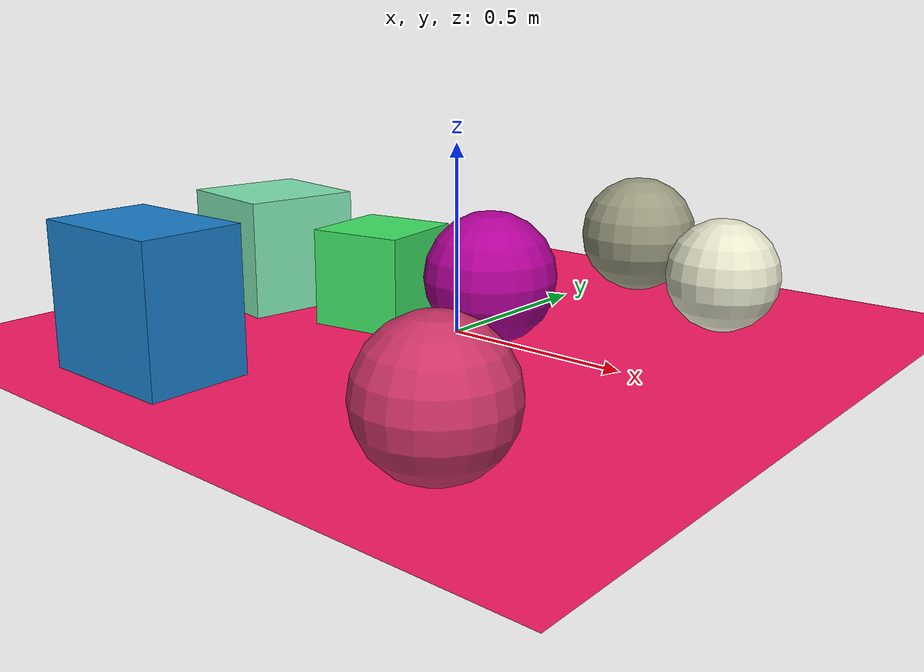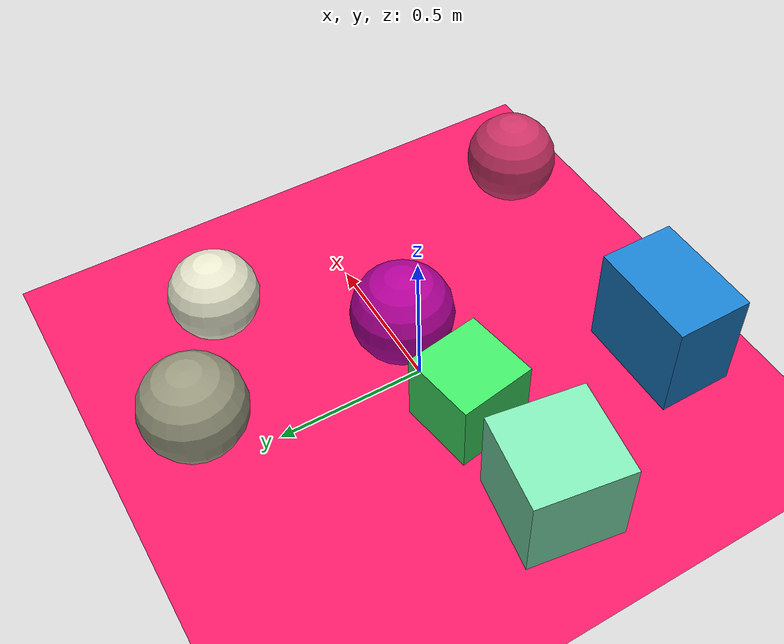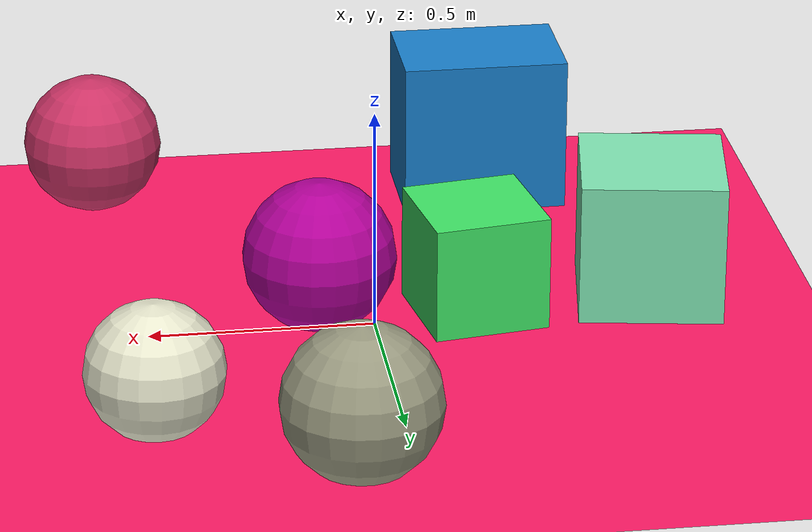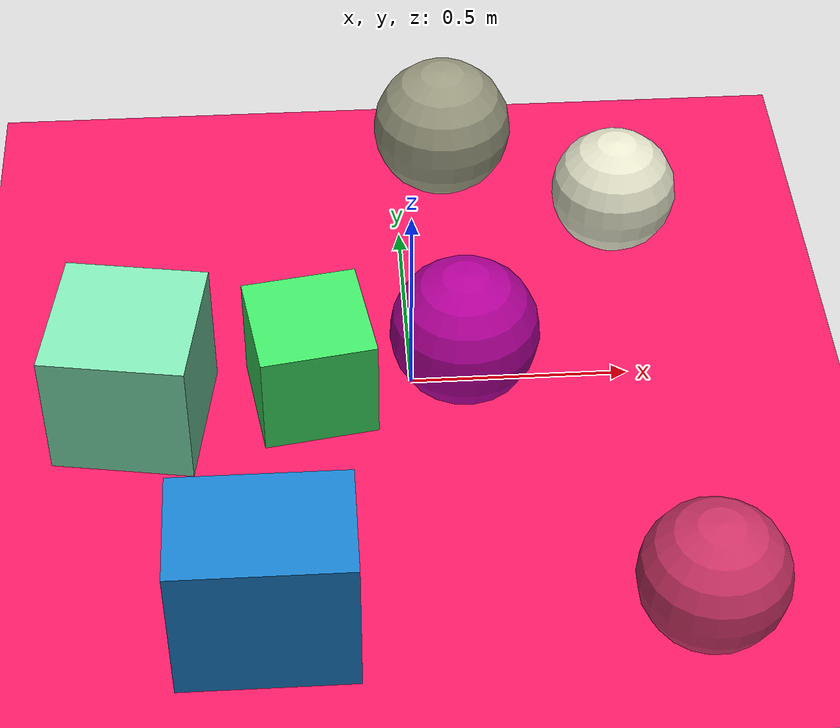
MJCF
<mujoco>
   <asset>
<texture type="skybox" builtin="gradient" rgb1="0.4 0.3 0.9" rgb2="0.7 0.9 0.9" width="256" height="256"/>
<texture name="checker_0" builtin="checker" rgb1="0.5 0.9 0.2" rgb2="0.0 0.9 0.6" width="200" height="200"/>
<texture name="flat_1" builtin="flat" rgb1="0.9 0.9 0.8" rgb2="0.9 0.9 0.8"  width="200" height="200"/>
<texture name="flat_2" builtin="flat" rgb1="0.5 0.9 0.7" rgb2="0.5 0.9 0.7"  width="200" height="200"/>
<texture name="flat_3" builtin="flat" rgb1="0.1 0.5 0.8" rgb2="0.1 0.5 0.8"  width="200" height="200"/>
<texture name="checker_4" builtin="checker" rgb1="0.5 0.3 0.4" rgb2="0.7 0.9 0.6" width="200" height="200"/>
<texture name="flat_5" builtin="flat" rgb1="0.8 0.2 0.4" rgb2="0.8 0.2 0.4"  width="200" height="200"/>
<texture name="flat_6" builtin="flat" rgb1="0.7 0.0 0.6" rgb2="0.7 0.0 0.6"  width="200" height="200"/><material name="checker_0_mat" reflectance="0" texrepeat="3 3" texture="checker_0" texuniform="false" />
<material name="flat_1_mat" reflectance="0" texture="flat_1" texuniform="true"/>
<material name="flat_2_mat" reflectance="0" texture="flat_2" texuniform="true"/>
<material name="flat_3_mat" reflectance="0" texture="flat_3" texuniform="true"/>
<material name="checker_4_mat" reflectance="0" texrepeat="10 10" texture="checker_4" texuniform="false" />
<material name="flat_5_mat" reflectance="0" texture="flat_5" texuniform="true"/>
<material name="flat_6_mat" reflectance="0" texture="flat_6" texuniform="true"/>
   </asset>

   <worldbody>
      <light diffuse=".9 .9 .9" pos="0 0 3" dir="0 0 -1"/>
     <geom type="plane" size="1 1 0.1" rgba="1.0 0.1 0.4 1"/>
<geom type="box" pos="-0.23 -0.04 0.13" size="0.13 0.13 0.13" material="checker_0_mat" euler="0 0 9" />
<geom type="sphere" pos="0.52 0.47 0.15" size="0.15 0.15 0.15" material="flat_1_mat" euler="0 0 55" />
<geom type="box" pos="-0.63 -0.08 0.16" size="0.16 0.16 0.16" material="flat_2_mat" euler="0 0 81" />
<geom type="box" pos="-0.34 -0.71 0.18" size="0.19 0.13 0.18" material="flat_3_mat" euler="0 0 0" />
<geom type="sphere" pos="0.12 0.71 0.17" size="0.17 0.17 0.17" material="checker_4_mat" euler="0 0 42" />
<geom type="sphere" pos="0.57 -0.73 0.16" size="0.16 0.16 0.16" material="flat_5_mat" euler="0 0 82" />
<geom type="sphere" pos="0.12 -0.01 0.17" size="0.17 0.17 0.17" material="flat_6_mat" euler="0 0 59" /><camera euler="60 0 180" fovy="60" name="camera1" pos="-0.2 -1.5 1"></camera>   </worldbody>
</mujoco>
